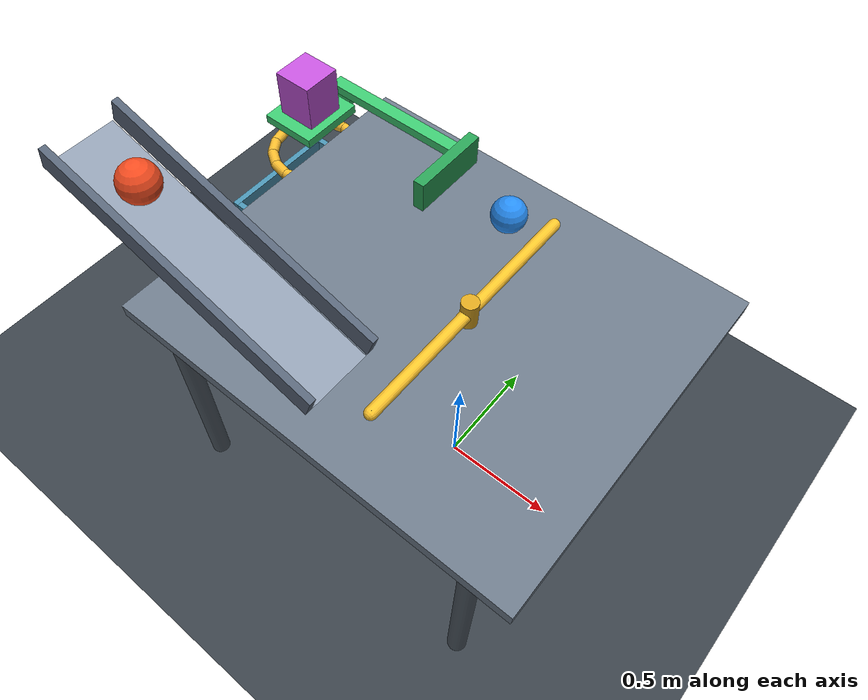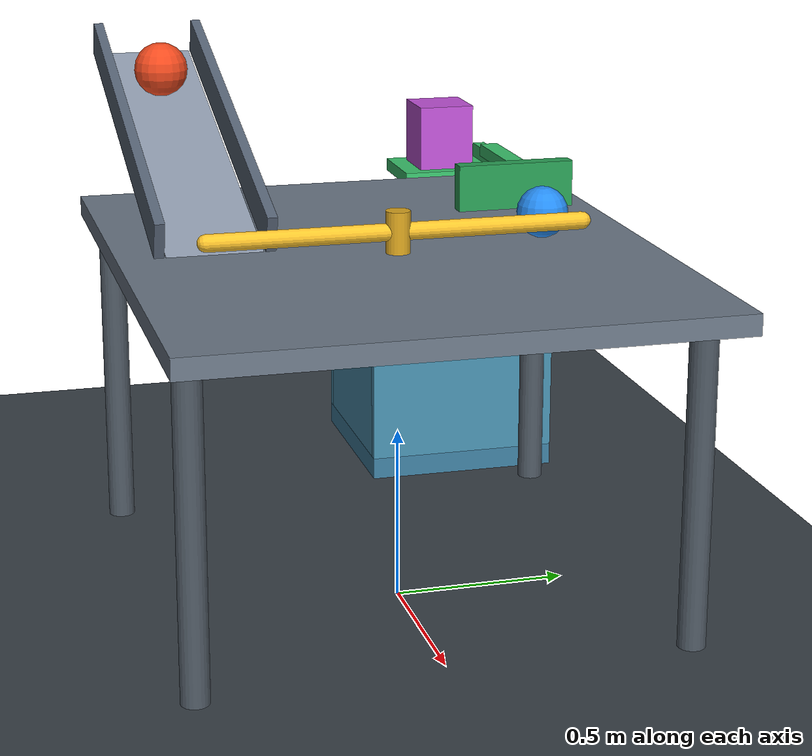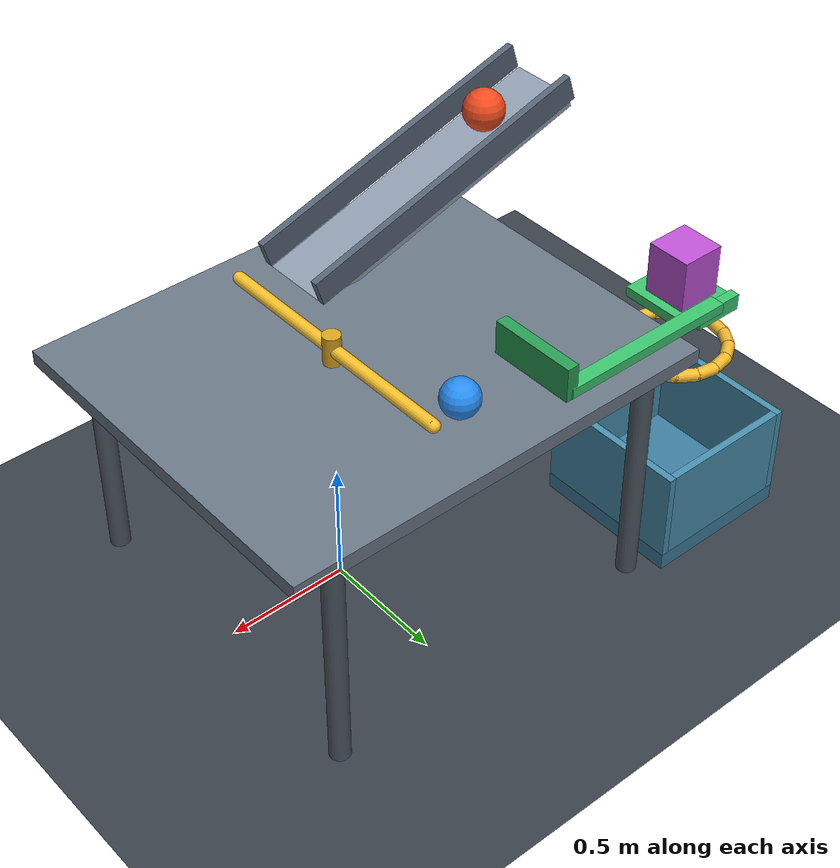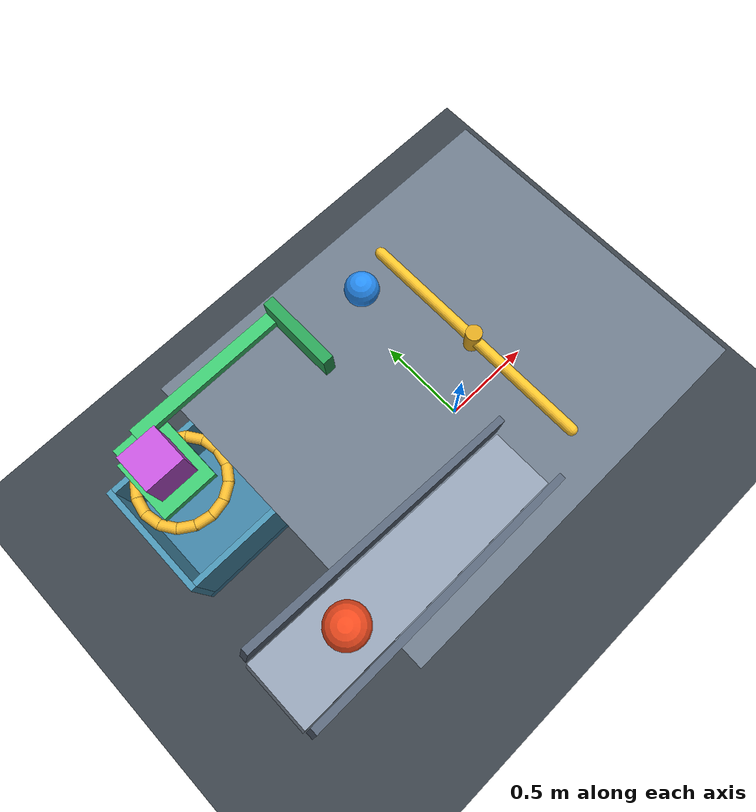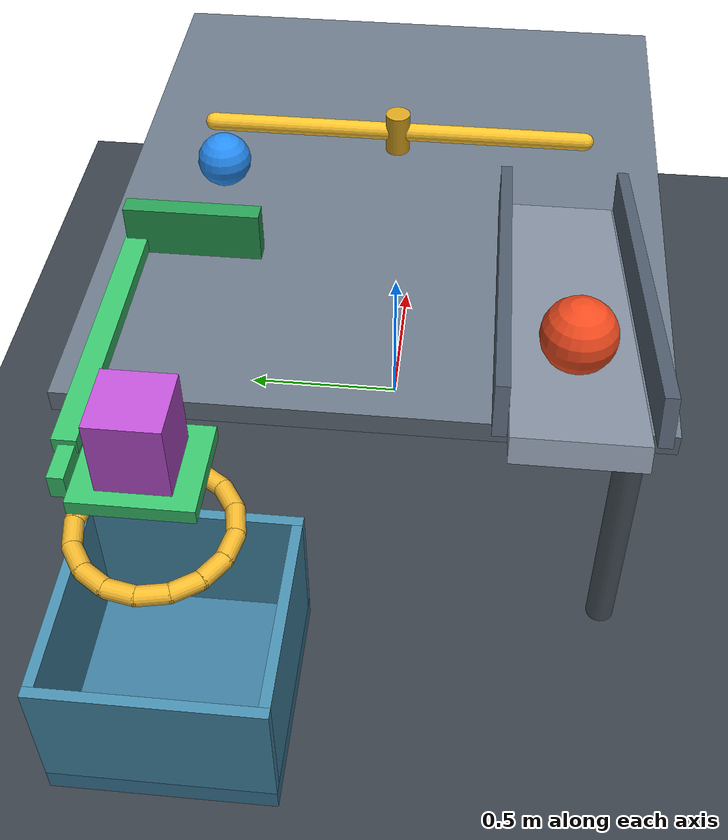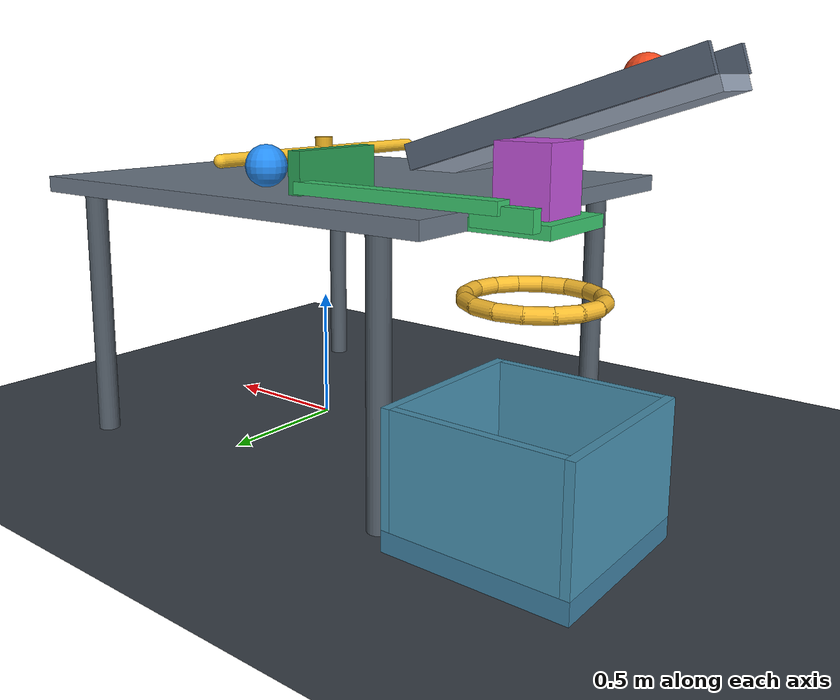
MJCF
<mujoco model="ramp_rotor_latch_drop">
  <compiler angle="degree" inertiafromgeom="true"/>
  <option timestep="0.002" gravity="0 0 -9.81" integrator="implicitfast" cone="elliptic" iterations="100"/>
  <size njmax="1000" nconmax="300"/>
  <visual>
    <global azimuth="135" elevation="-25"/>
  </visual>

  <worldbody>
    <light name="overhead" pos="-1 -2 5" dir="0 0 -1" diffuse="0.9 0.9 0.9"/>
    <camera name="overview" pos="-3 -4 3" xyaxes="0.8 -0.6 0 0.3 0.4 0.866"/>
    <geom name="floor" type="plane" pos="0 0 0" size="5 5 0.1" condim="6" priority="1" friction="1 0.02 0.035" solref="0.008 1" rgba="0.22 0.25 0.28 1"/>

    <!-- The ball1 contact point starts exactly 1 m along the incline from its lower end. -->
    <body name="ramp" pos="-0.8200605 -0.48 1.195" euler="0 17.457603 0">
      <geom name="ramp_surface" type="box" pos="0 0 -0.03" size="0.65 0.14 0.03" condim="6" friction="0.65 0.003 0.001" solref="0.006 1" rgba="0.56 0.61 0.68 1"/>
      <geom name="ramp_left_rail" type="box" pos="0 -0.16 0.055" size="0.65 0.015 0.055" friction="0.4 0.003 0.001" rgba="0.34 0.39 0.46 1"/>
      <geom name="ramp_right_rail" type="box" pos="0 0.16 0.055" size="0.65 0.015 0.055" friction="0.4 0.003 0.001" rgba="0.34 0.39 0.46 1"/>
    </body>

    <body name="deck" pos="0 0 0">
      <geom name="deck_surface" type="box" pos="-0.15 0 0.97" size="0.9 0.76 0.03" condim="6" friction="0.7 0.004 0.002" solref="0.006 1" rgba="0.42 0.47 0.53 1"/>
      <geom name="deck_leg_front_left" type="cylinder" pos="-0.85 -0.69 0.47" size="0.04 0.47" rgba="0.3 0.34 0.38 1"/>
      <geom name="deck_leg_front_right" type="cylinder" pos="0.55 -0.69 0.47" size="0.04 0.47" rgba="0.3 0.34 0.38 1"/>
      <geom name="deck_leg_back_left" type="cylinder" pos="-0.85 0.69 0.47" size="0.04 0.47" rgba="0.3 0.34 0.38 1"/>
      <geom name="deck_leg_back_right" type="cylinder" pos="0.55 0.69 0.47" size="0.04 0.47" rgba="0.3 0.34 0.38 1"/>
    </body>

    <body name="ball1" pos="-1.128439 -0.48 1.381085">
      <freejoint name="ball1_free"/>
      <geom name="ball1_sphere" type="sphere" size="0.085" mass="0.55" condim="6" friction="0.65 0.003 0.002" solref="0.006 1" rgba="0.94 0.29 0.12 1"/>
    </body>

    <!-- The lower arm receives ball1; the opposite arm sweeps left into ball2. -->
    <body name="rotor" pos="0 0 1.085">
      <joint name="rotor_hinge" type="hinge" axis="0 0 1" limited="true" range="0 75" damping="0.006" frictionloss="0.002" armature="0.001"/>
      <geom name="rotor_hub" type="cylinder" size="0.035 0.06" mass="0.07" friction="0.4 0.003 0.001" rgba="0.85 0.64 0.12 1"/>
      <geom name="rotor_trigger_arm" type="capsule" fromto="0 0 0 0 -0.54 0" size="0.025" mass="0.06" friction="0.4 0.003 0.001" solref="0.005 1" rgba="0.98 0.76 0.17 1"/>
      <geom name="rotor_striker_arm" type="capsule" fromto="0 0 0 0 0.54 0" size="0.025" mass="0.06" friction="0.4 0.003 0.001" solref="0.005 1" rgba="0.98 0.76 0.17 1"/>
    </body>

    <body name="ball2" pos="-0.17 0.48 1.075">
      <freejoint name="ball2_free"/>
      <geom name="ball2_sphere" type="sphere" size="0.075" mass="0.13" condim="6" friction="0.65 0.003 0.002" solref="0.005 1" rgba="0.15 0.55 0.95 1"/>
    </body>

    <!-- A side-routed handle keeps the latch linkage clear of the payload. -->
    <body name="latch" pos="-1.25 0.48 1">
      <joint name="latch_slide" type="slide" axis="1 0 0" limited="true" range="-0.5 0" damping="0.025" frictionloss="0.018"/>
      <geom name="latch_support" type="box" pos="0 0 -0.02" size="0.13 0.15 0.02" mass="0.025" priority="2" condim="3" friction="0.004 0.001 0.0001" solref="0.006 1" rgba="0.23 0.77 0.43 1"/>
      <geom name="latch_yoke" type="box" pos="0 0.17 0.0125" size="0.1 0.02 0.0325" mass="0.006" priority="2" friction="0.004 0.001 0.0001" rgba="0.23 0.77 0.43 1"/>
      <geom name="latch_link" type="box" pos="0.375 0.175 0.04" size="0.375 0.03 0.02" mass="0.018" priority="2" friction="0.004 0.001 0.0001" rgba="0.23 0.77 0.43 1"/>
      <geom name="latch_strike_tab" type="box" pos="0.75 0.02 0.085" size="0.025 0.18 0.07" mass="0.025" priority="2" condim="3" friction="0.004 0.001 0.0001" solref="0.005 1" rgba="0.16 0.62 0.33 1"/>
    </body>

    <body name="block" pos="-1.25 0.48 1.105">
      <freejoint name="block_free"/>
      <geom name="block_payload" type="box" size="0.09 0.09 0.105" mass="0.12" condim="3" friction="0.85 0.005 0.001" solref="0.006 1" rgba="0.75 0.32 0.84 1"/>
    </body>

    <!-- Circular opening: 0.20 m centerline radius and 0.025 m tube radius. -->
    <body name="ring" pos="-1.25 0.48 0.76">
      <geom name="ring_segment_01" type="capsule" fromto="0.2 0 0 0.184776 0.076537 0" size="0.025" rgba="0.95 0.72 0.18 1"/>
      <geom name="ring_segment_02" type="capsule" fromto="0.184776 0.076537 0 0.141421 0.141421 0" size="0.025" rgba="0.95 0.72 0.18 1"/>
      <geom name="ring_segment_03" type="capsule" fromto="0.141421 0.141421 0 0.076537 0.184776 0" size="0.025" rgba="0.95 0.72 0.18 1"/>
      <geom name="ring_segment_04" type="capsule" fromto="0.076537 0.184776 0 0 0.2 0" size="0.025" rgba="0.95 0.72 0.18 1"/>
      <geom name="ring_segment_05" type="capsule" fromto="0 0.2 0 -0.076537 0.184776 0" size="0.025" rgba="0.95 0.72 0.18 1"/>
      <geom name="ring_segment_06" type="capsule" fromto="-0.076537 0.184776 0 -0.141421 0.141421 0" size="0.025" rgba="0.95 0.72 0.18 1"/>
      <geom name="ring_segment_07" type="capsule" fromto="-0.141421 0.141421 0 -0.184776 0.076537 0" size="0.025" rgba="0.95 0.72 0.18 1"/>
      <geom name="ring_segment_08" type="capsule" fromto="-0.184776 0.076537 0 -0.2 0 0" size="0.025" rgba="0.95 0.72 0.18 1"/>
      <geom name="ring_segment_09" type="capsule" fromto="-0.2 0 0 -0.184776 -0.076537 0" size="0.025" rgba="0.95 0.72 0.18 1"/>
      <geom name="ring_segment_10" type="capsule" fromto="-0.184776 -0.076537 0 -0.141421 -0.141421 0" size="0.025" rgba="0.95 0.72 0.18 1"/>
      <geom name="ring_segment_11" type="capsule" fromto="-0.141421 -0.141421 0 -0.076537 -0.184776 0" size="0.025" rgba="0.95 0.72 0.18 1"/>
      <geom name="ring_segment_12" type="capsule" fromto="-0.076537 -0.184776 0 0 -0.2 0" size="0.025" rgba="0.95 0.72 0.18 1"/>
      <geom name="ring_segment_13" type="capsule" fromto="0 -0.2 0 0.076537 -0.184776 0" size="0.025" rgba="0.95 0.72 0.18 1"/>
      <geom name="ring_segment_14" type="capsule" fromto="0.076537 -0.184776 0 0.141421 -0.141421 0" size="0.025" rgba="0.95 0.72 0.18 1"/>
      <geom name="ring_segment_15" type="capsule" fromto="0.141421 -0.141421 0 0.184776 -0.076537 0" size="0.025" rgba="0.95 0.72 0.18 1"/>
      <geom name="ring_segment_16" type="capsule" fromto="0.184776 -0.076537 0 0.2 0 0" size="0.025" rgba="0.95 0.72 0.18 1"/>
    </body>

    <body name="box" pos="-1.25 0.48 0">
      <geom name="box_bottom" type="box" pos="0 0 0.035" size="0.31 0.31 0.035" friction="0.9 0.005 0.001" solref="0.006 1" rgba="0.24 0.49 0.62 1"/>
      <geom name="box_wall_left" type="box" pos="-0.295 0 0.26" size="0.015 0.31 0.19" friction="0.9 0.005 0.001" solref="0.006 1" rgba="0.28 0.56 0.68 1"/>
      <geom name="box_wall_right" type="box" pos="0.295 0 0.26" size="0.015 0.31 0.19" friction="0.9 0.005 0.001" solref="0.006 1" rgba="0.28 0.56 0.68 1"/>
      <geom name="box_wall_front" type="box" pos="0 -0.295 0.26" size="0.28 0.015 0.19" friction="0.9 0.005 0.001" solref="0.006 1" rgba="0.28 0.56 0.68 1"/>
      <geom name="box_wall_back" type="box" pos="0 0.295 0.26" size="0.28 0.015 0.19" friction="0.9 0.005 0.001" solref="0.006 1" rgba="0.28 0.56 0.68 1"/>
    </body>
  </worldbody>

  <keyframe>
    <key name="start" qpos="-1.128439 -0.48 1.381085 1 0 0 0 0 -0.17 0.48 1.075 1 0 0 0 0 -1.25 0.48 1.105 1 0 0 0"/>
  </keyframe>
</mujoco>
